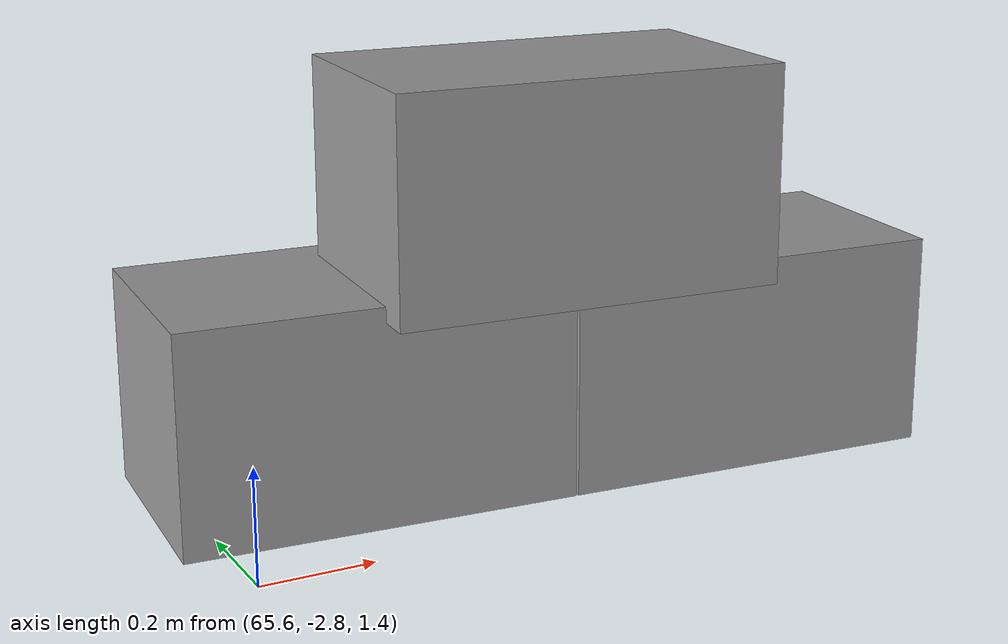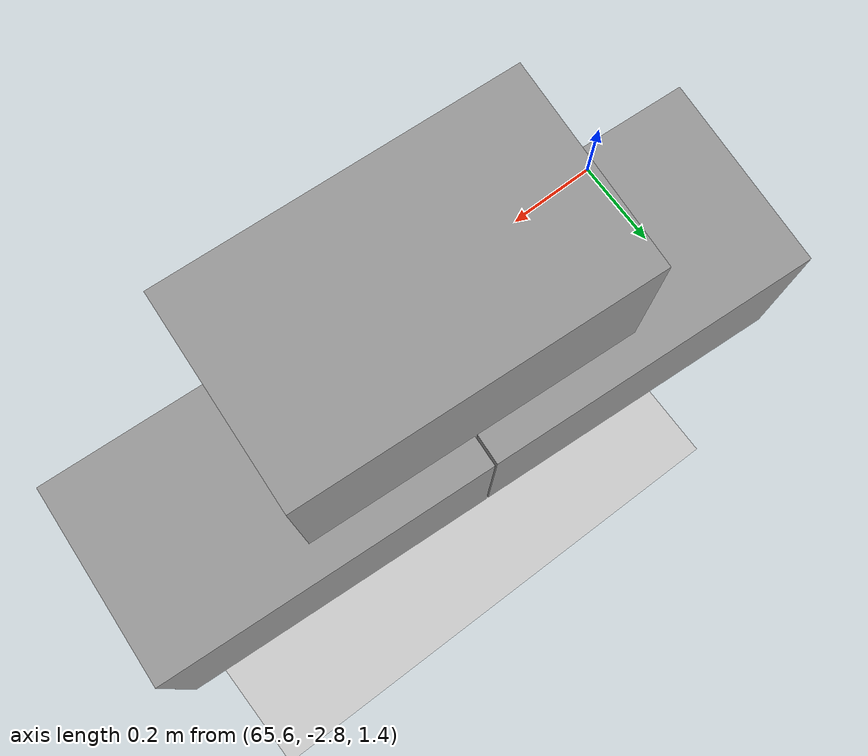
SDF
<sdf version="1.7">
 <world name="default">
  <model name="ground_plane">
   <static>1</static>
   <link name="link">
    <collision name="collision">
     <geometry><plane><normal>0 0 1</normal><size>100 100</size></plane></geometry>
     <surface>
      <contact><collide_bitmask>65535</collide_bitmask></contact>
      <friction><ode><mu>100</mu><mu2>50</mu2></ode></friction>
     </surface>
    </collision>
    <visual name="visual">
     <cast_shadows>0</cast_shadows>
     <geometry><plane><normal>0 0 1</normal><size>100 100</size></plane></geometry>
     <material>
      <script><uri>file://media/materials/scripts/gazebo.material</uri><name>Gazebo/Grey</name></script>
     </material>
    </visual>
   </link>
  </model>
  <model name="Add_Box_clone_clone_3_clone_13">
   <link name="link">
    <inertial>
     <mass>1</mass>
     <inertia>
      <ixx>0.166667</ixx>
      <ixy>0</ixy>
      <ixz>0</ixz>
      <iyy>0.166667</iyy>
      <iyz>0</iyz>
      <izz>0.166667</izz>
     </inertia>
    </inertial>
    <kinematic>1</kinematic>
    <gravity>0</gravity>
    <visual name="visual">
     <geometry><box><size>0.686 0.406 0.381</size></box></geometry>
     <material>
      <script><name>Gazebo/Grey</name><uri>file://media/materials/scripts/gazebo.material</uri></script>
      <shader type="pixel"><normal_map>__default__</normal_map></shader>
      <ambient>0.3 0.3 0.3 1</ambient>
      <diffuse>0.7 0.7 0.7 1</diffuse>
      <specular>0.01 0.01 0.01 1</specular>
      <emissive>0 0 0 1</emissive>
     </material>
    </visual>
    <collision name="collision">
     <geometry><box><size>1 1 1</size></box></geometry>
     <surface>
      <friction>
       <ode><mu>1</mu><mu2>1</mu2><fdir1>0 0 0</fdir1><slip1>0</slip1><slip2>0</slip2></ode>
       <torsional>
        <coefficient>1</coefficient>
        <patch_radius>0</patch_radius>
        <surface_radius>0</surface_radius>
        <use_patch_radius>1</use_patch_radius>
        <ode><slip>0</slip></ode>
       </torsional>
      </friction>
      <bounce><restitution_coefficient>0</restitution_coefficient><threshold>1e+06</threshold></bounce>
      <contact>
       <collide_without_contact>0</collide_without_contact>
       <collide_without_contact_bitmask>1</collide_without_contact_bitmask>
       <collide_bitmask>1</collide_bitmask>
       <ode>
        <soft_cfm>0</soft_cfm>
        <soft_erp>0.2</soft_erp>
        <kp>1e+13</kp>
        <kd>1</kd>
        <max_vel>0.01</max_vel>
        <min_depth>0</min_depth>
       </ode>
       <bullet>
        <split_impulse>1</split_impulse>
        <split_impulse_penetration_threshold>-0.01</split_impulse_penetration_threshold>
        <soft_cfm>0</soft_cfm>
        <soft_erp>0.2</soft_erp>
        <kp>1e+13</kp>
        <kd>1</kd>
       </bullet>
      </contact>
     </surface>
    </collision>
   </link>
   <link name="link_clone">
    <inertial>
     <mass>1</mass>
     <inertia>
      <ixx>0.166667</ixx>
      <ixy>0</ixy>
      <ixz>0</ixz>
      <iyy>0.166667</iyy>
      <iyz>0</iyz>
      <izz>0.166667</izz>
     </inertia>
    </inertial>
    <pose>-0.343354 -0.063316 0.354303 1e-05 -0 0</pose>
    <gravity>0</gravity>
    <visual name="visual">
     <geometry><box><size>0.686 0.406 0.381</size></box></geometry>
     <material>
      <script><name>Gazebo/Grey</name><uri>file://media/materials/scripts/gazebo.material</uri></script>
      <shader type="pixel"><normal_map>__default__</normal_map></shader>
      <ambient>0.3 0.3 0.3 1</ambient>
      <diffuse>0.7 0.7 0.7 1</diffuse>
      <specular>0.01 0.01 0.01 1</specular>
      <emissive>0 0 0 1</emissive>
     </material>
    </visual>
    <collision name="collision">
     <geometry><box><size>1 1 1</size></box></geometry>
     <surface>
      <friction>
       <ode><mu>1</mu><mu2>1</mu2><fdir1>0 0 0</fdir1><slip1>0</slip1><slip2>0</slip2></ode>
       <torsional>
        <coefficient>1</coefficient>
        <patch_radius>0</patch_radius>
        <surface_radius>0</surface_radius>
        <use_patch_radius>1</use_patch_radius>
        <ode><slip>0</slip></ode>
       </torsional>
      </friction>
      <bounce><restitution_coefficient>0</restitution_coefficient><threshold>1e+06</threshold></bounce>
      <contact>
       <collide_without_contact>0</collide_without_contact>
       <collide_without_contact_bitmask>1</collide_without_contact_bitmask>
       <collide_bitmask>1</collide_bitmask>
       <ode>
        <soft_cfm>0</soft_cfm>
        <soft_erp>0.2</soft_erp>
        <kp>1e+13</kp>
        <kd>1</kd>
        <max_vel>0.01</max_vel>
        <min_depth>0</min_depth>
       </ode>
       <bullet>
        <split_impulse>1</split_impulse>
        <split_impulse_penetration_threshold>-0.01</split_impulse_penetration_threshold>
        <soft_cfm>0</soft_cfm>
        <soft_erp>0.2</soft_erp>
        <kp>1e+13</kp>
        <kd>1</kd>
       </bullet>
      </contact>
     </surface>
    </collision>
   </link>
   <link name="link_clone_clone">
    <inertial>
     <mass>1</mass>
     <inertia>
      <ixx>0.166667</ixx>
      <ixy>0</ixy>
      <ixz>0</ixz>
      <iyy>0.166667</iyy>
      <iyz>0</iyz>
      <izz>0.166667</izz>
     </inertia>
    </inertial>
    <pose>-0.690786 -0.000183 -1e-05 2e-05 -0 0</pose>
    <gravity>0</gravity>
    <visual name="visual">
     <geometry><box><size>0.686 0.406 0.381</size></box></geometry>
     <material>
      <script><name>Gazebo/Grey</name><uri>file://media/materials/scripts/gazebo.material</uri></script>
      <shader type="pixel"><normal_map>__default__</normal_map></shader>
      <ambient>0.3 0.3 0.3 1</ambient>
      <diffuse>0.7 0.7 0.7 1</diffuse>
      <specular>0.01 0.01 0.01 1</specular>
      <emissive>0 0 0 1</emissive>
     </material>
    </visual>
    <collision name="collision">
     <geometry><box><size>1 1 1</size></box></geometry>
     <surface>
      <friction>
       <ode><mu>1</mu><mu2>1</mu2><fdir1>0 0 0</fdir1><slip1>0</slip1><slip2>0</slip2></ode>
       <torsional>
        <coefficient>1</coefficient>
        <patch_radius>0</patch_radius>
        <surface_radius>0</surface_radius>
        <use_patch_radius>1</use_patch_radius>
        <ode><slip>0</slip></ode>
       </torsional>
      </friction>
      <bounce><restitution_coefficient>0</restitution_coefficient><threshold>1e+06</threshold></bounce>
      <contact>
       <collide_without_contact>0</collide_without_contact>
       <collide_without_contact_bitmask>1</collide_without_contact_bitmask>
       <collide_bitmask>1</collide_bitmask>
       <ode>
        <soft_cfm>0</soft_cfm>
        <soft_erp>0.2</soft_erp>
        <kp>1e+13</kp>
        <kd>1</kd>
        <max_vel>0.01</max_vel>
        <min_depth>0</min_depth>
       </ode>
       <bullet>
        <split_impulse>1</split_impulse>
        <split_impulse_penetration_threshold>-0.01</split_impulse_penetration_threshold>
        <soft_cfm>0</soft_cfm>
        <soft_erp>0.2</soft_erp>
        <kp>1e+13</kp>
        <kd>1</kd>
       </bullet>
      </contact>
     </surface>
    </collision>
   </link>
   <static>0</static>
   <pose>66.5512 -2.58228 1.61518 0 0 -0.064917</pose>
  </model>
 </world>
</sdf>
